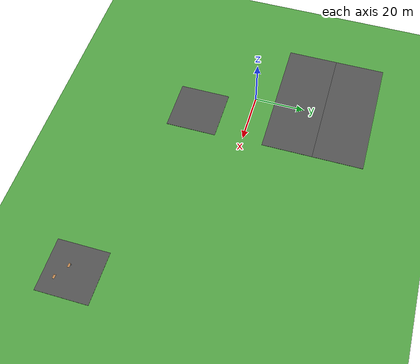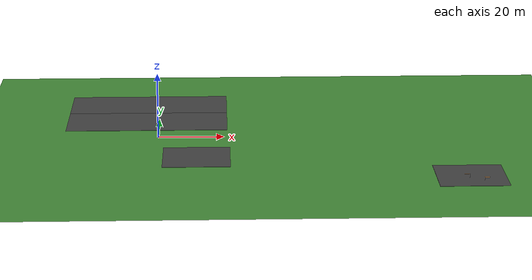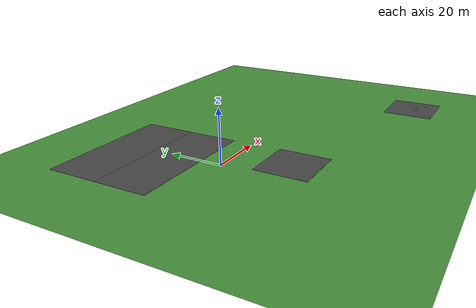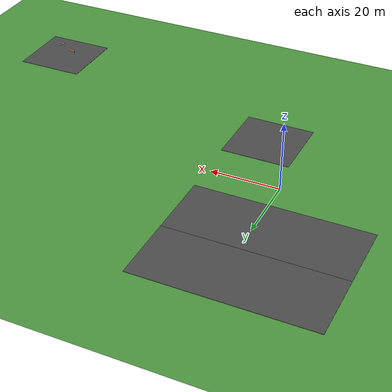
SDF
<sdf version="1.4">
 <world name="default">
  <light name="sun" type="directional">
   <pose>0 0 10 0 -0 0</pose>
   <diffuse>0.8 0.8 0.8 1</diffuse>
   <specular>0.2 0.2 0.2 1</specular>
   <attenuation>
    <range>1000</range>
    <constant>0.9</constant>
    <linear>0.01</linear>
    <quadratic>0.001</quadratic>
   </attenuation>
   <direction>-0.5 0.1 -0.9</direction>
  </light>
  <physics type="ode">
   <max_step_size>0.001</max_step_size>
   <real_time_factor>1</real_time_factor>
   <real_time_update_rate>1000</real_time_update_rate>
   <gravity>0 0 -9.8</gravity>
  </physics>
  <scene>
   <grid>0</grid>
   <sky><clouds><speed>8</speed></clouds></sky>
   <ambient>0.4 0.4 0.4 1</ambient>
   <background>0.7 0.7 0.7 1</background>
   <shadows>1</shadows>
  </scene>
  <spherical_coordinates>
   <surface_model>EARTH_WGS84</surface_model>
   <latitude_deg>0</latitude_deg>
   <longitude_deg>0</longitude_deg>
   <elevation>0</elevation>
   <heading_deg>0</heading_deg>
  </spherical_coordinates>
  <model name="ground_plane_0">
   <static>1</static>
   <link name="link">
    <collision name="collision">
     <geometry><plane><normal>0 0 1</normal><size>100 100</size></plane></geometry>
     <surface><friction><ode><mu>100</mu><mu2>50</mu2></ode></friction></surface>
    </collision>
    <velocity_decay><linear>0</linear><angular>0</angular></velocity_decay>
   </link>
   <pose>-4 0 0 0 -0 0</pose>
  </model>
  <model name="ground_plane">
   <static>1</static>
   <link name="link">
    <collision name="collision">
     <geometry><plane><normal>0 0 1</normal><size>100 100</size></plane></geometry>
     <surface><friction><ode><mu>100</mu><mu2>50</mu2></ode></friction></surface>
    </collision>
    <velocity_decay><linear>0</linear><angular>0</angular></velocity_decay>
   </link>
   <pose>-4 99.5994 0 0 -0 0</pose>
  </model>
  <model name="ground_plane_1">
   <static>1</static>
   <link name="link">
    <collision name="collision">
     <geometry><plane><normal>0 0 1</normal><size>100 100</size></plane></geometry>
     <surface><friction><ode><mu>100</mu><mu2>50</mu2></ode></friction></surface>
    </collision>
    <velocity_decay><linear>0</linear><angular>0</angular></velocity_decay>
   </link>
   <pose>-102 0 0 0 -0 0</pose>
  </model>
  <model name="ground_plane_2">
   <static>1</static>
   <link name="link">
    <collision name="collision">
     <geometry><plane><normal>0 0 1</normal><size>100 100</size></plane></geometry>
     <surface><friction><ode><mu>100</mu><mu2>50</mu2></ode></friction></surface>
    </collision>
    <velocity_decay><linear>0</linear><angular>0</angular></velocity_decay>
   </link>
   <pose>-103 100 0 0 -0 0</pose>
  </model>
  <model name="vrc_driving_terrain_0">
   <static>1</static>
   <link name="grass_plane">
    <collision name="collision">
     <geometry><plane><normal>0 0 1</normal><size>500 500</size></plane></geometry>
     <surface><friction><ode><mu>0.5</mu><mu2>0.5</mu2></ode></friction></surface>
    </collision>
    <visual name="visual_0">
     <cast_shadows>0</cast_shadows>
     <geometry><plane><normal>0 0 1</normal><size>500 500</size></plane></geometry>
     <material>
      <script>
       <uri>model://vrc_driving_terrain/materials/scripts</uri>
       <uri>model://vrc_driving_terrain/materials/textures</uri>
       <name>vrc/grass</name>
      </script>
     </material>
    </visual>
    <velocity_decay><linear>0</linear><angular>0</angular></velocity_decay>
   </link>
   <pose>-12.4943 -66.4306 -0.1 0 -0 0</pose>
  </model>
  <model name="table">
   <static>1</static>
   <link name="link">
    <collision name="surface">
     <pose>0 0 1 0 -0 0</pose>
     <geometry><box><size>1.5 0.8 0.03</size></box></geometry>
     <surface><friction><ode><mu>0.6</mu><mu2>0.6</mu2></ode></friction></surface>
    </collision>
    <visual name="visual1">
     <pose>0 0 1 0 -0 0</pose>
     <geometry><box><size>1.5 0.8 0.03</size></box></geometry>
     <material>
      <script><uri>file://media/materials/scripts/gazebo.material</uri><name>Gazebo/Wood</name></script>
     </material>
    </visual>
    <collision name="front_left_leg">
     <pose>0.68 0.38 0.5 0 -0 0</pose>
     <geometry><cylinder><radius>0.02</radius><length>1</length></cylinder></geometry>
    </collision>
    <visual name="front_left_leg">
     <pose>0.68 0.38 0.5 0 -0 0</pose>
     <geometry><cylinder><radius>0.02</radius><length>1</length></cylinder></geometry>
     <material>
      <script><uri>file://media/materials/scripts/gazebo.material</uri><name>Gazebo/Grey</name></script>
     </material>
    </visual>
    <collision name="front_right_leg">
     <pose>0.68 -0.38 0.5 0 -0 0</pose>
     <geometry><cylinder><radius>0.02</radius><length>1</length></cylinder></geometry>
    </collision>
    <visual name="front_right_leg">
     <pose>0.68 -0.38 0.5 0 -0 0</pose>
     <geometry><cylinder><radius>0.02</radius><length>1</length></cylinder></geometry>
     <material>
      <script><uri>file://media/materials/scripts/gazebo.material</uri><name>Gazebo/Grey</name></script>
     </material>
    </visual>
    <collision name="back_right_leg">
     <pose>-0.68 -0.38 0.5 0 -0 0</pose>
     <geometry><cylinder><radius>0.02</radius><length>1</length></cylinder></geometry>
    </collision>
    <visual name="back_right_leg">
     <pose>-0.68 -0.38 0.5 0 -0 0</pose>
     <geometry><cylinder><radius>0.02</radius><length>1</length></cylinder></geometry>
     <material>
      <script><uri>file://media/materials/scripts/gazebo.material</uri><name>Gazebo/Grey</name></script>
     </material>
    </visual>
    <collision name="back_left_leg">
     <pose>-0.68 0.38 0.5 0 -0 0</pose>
     <geometry><cylinder><radius>0.02</radius><length>1</length></cylinder></geometry>
    </collision>
    <visual name="back_left_leg">
     <pose>-0.68 0.38 0.5 0 -0 0</pose>
     <geometry><cylinder><radius>0.02</radius><length>1</length></cylinder></geometry>
     <material>
      <script><uri>file://media/materials/scripts/gazebo.material</uri><name>Gazebo/Grey</name></script>
     </material>
    </visual>
    <velocity_decay><linear>0</linear><angular>0</angular></velocity_decay>
   </link>
   <pose>89.1422 -43.328 0 0 -0 0</pose>
  </model>
  <model name="table_0">
   <static>1</static>
   <link name="link">
    <collision name="surface">
     <pose>0 0 1 0 -0 0</pose>
     <geometry><box><size>1.5 0.8 0.03</size></box></geometry>
     <surface><friction><ode><mu>0.6</mu><mu2>0.6</mu2></ode></friction></surface>
    </collision>
    <visual name="visual1">
     <pose>0 0 1 0 -0 0</pose>
     <geometry><box><size>1.5 0.8 0.03</size></box></geometry>
     <material>
      <script><uri>file://media/materials/scripts/gazebo.material</uri><name>Gazebo/Wood</name></script>
     </material>
    </visual>
    <collision name="front_left_leg">
     <pose>0.68 0.38 0.5 0 -0 0</pose>
     <geometry><cylinder><radius>0.02</radius><length>1</length></cylinder></geometry>
    </collision>
    <visual name="front_left_leg">
     <pose>0.68 0.38 0.5 0 -0 0</pose>
     <geometry><cylinder><radius>0.02</radius><length>1</length></cylinder></geometry>
     <material>
      <script><uri>file://media/materials/scripts/gazebo.material</uri><name>Gazebo/Grey</name></script>
     </material>
    </visual>
    <collision name="front_right_leg">
     <pose>0.68 -0.38 0.5 0 -0 0</pose>
     <geometry><cylinder><radius>0.02</radius><length>1</length></cylinder></geometry>
    </collision>
    <visual name="front_right_leg">
     <pose>0.68 -0.38 0.5 0 -0 0</pose>
     <geometry><cylinder><radius>0.02</radius><length>1</length></cylinder></geometry>
     <material>
      <script><uri>file://media/materials/scripts/gazebo.material</uri><name>Gazebo/Grey</name></script>
     </material>
    </visual>
    <collision name="back_right_leg">
     <pose>-0.68 -0.38 0.5 0 -0 0</pose>
     <geometry><cylinder><radius>0.02</radius><length>1</length></cylinder></geometry>
    </collision>
    <visual name="back_right_leg">
     <pose>-0.68 -0.38 0.5 0 -0 0</pose>
     <geometry><cylinder><radius>0.02</radius><length>1</length></cylinder></geometry>
     <material>
      <script><uri>file://media/materials/scripts/gazebo.material</uri><name>Gazebo/Grey</name></script>
     </material>
    </visual>
    <collision name="back_left_leg">
     <pose>-0.68 0.38 0.5 0 -0 0</pose>
     <geometry><cylinder><radius>0.02</radius><length>1</length></cylinder></geometry>
    </collision>
    <visual name="back_left_leg">
     <pose>-0.68 0.38 0.5 0 -0 0</pose>
     <geometry><cylinder><radius>0.02</radius><length>1</length></cylinder></geometry>
     <material>
      <script><uri>file://media/materials/scripts/gazebo.material</uri><name>Gazebo/Grey</name></script>
     </material>
    </visual>
    <velocity_decay><linear>0</linear><angular>0</angular></velocity_decay>
   </link>
   <pose>94.4463 -46.5777 0 0 -0 0</pose>
  </model>
  <model name="ground_plane_3">
   <static>1</static>
   <link name="link">
    <collision name="collision">
     <geometry><plane><normal>0 0 1</normal><size>100 100</size></plane></geometry>
     <surface><friction><ode><mu>100</mu><mu2>50</mu2></ode></friction></surface>
    </collision>
    <velocity_decay><linear>0</linear><angular>0</angular></velocity_decay>
   </link>
   <pose>96 0 0 0 -0 0</pose>
  </model>
  <model name="ground_plane_4">
   <static>1</static>
   <link name="link">
    <collision name="collision">
     <geometry><plane><normal>0 0 1</normal><size>100 100</size></plane></geometry>
     <surface><friction><ode><mu>100</mu><mu2>50</mu2></ode></friction></surface>
    </collision>
    <velocity_decay><linear>0</linear><angular>0</angular></velocity_decay>
   </link>
   <pose>95 100 0 0 -0 0</pose>
  </model>
  <model name="asphalt_plane">
   <static>1</static>
   <link name="link">
    <collision name="collision"><geometry><box><size>50 20 0</size></box></geometry></collision>
    <visual name="visual">
     <cast_shadows>0</cast_shadows>
     <geometry><box><size>50 20 0.1</size></box></geometry>
     <material>
      <script>
       <uri>model://asphalt_plane/materials/scripts</uri>
       <uri>model://asphalt_plane/materials/textures</uri>
       <name>vrc/asphalt</name>
      </script>
     </material>
    </visual>
    <velocity_decay><linear>0</linear><angular>0</angular></velocity_decay>
   </link>
   <pose>-3.88449 17.959 0 0 -0 0</pose>
  </model>
  <model name="asphalt_plane_0">
   <static>1</static>
   <link name="link">
    <collision name="collision"><geometry><box><size>20 20 0</size></box></geometry></collision>
    <visual name="visual">
     <cast_shadows>0</cast_shadows>
     <geometry><box><size>20 20 0.1</size></box></geometry>
     <material>
      <script>
       <uri>model://asphalt_plane/materials/scripts</uri>
       <uri>model://asphalt_plane/materials/textures</uri>
       <name>vrc/asphalt</name>
      </script>
     </material>
    </visual>
    <velocity_decay><linear>0</linear><angular>0</angular></velocity_decay>
   </link>
   <pose>90.4858 -41.5677 0 0 -0 0</pose>
  </model>
  <model name="asphalt_plane_1">
   <static>1</static>
   <link name="link">
    <collision name="collision"><geometry><box><size>50 20 0</size></box></geometry></collision>
    <visual name="visual">
     <cast_shadows>0</cast_shadows>
     <geometry><box><size>50 20 0.1</size></box></geometry>
     <material>
      <script>
       <uri>model://asphalt_plane/materials/scripts</uri>
       <uri>model://asphalt_plane/materials/textures</uri>
       <name>vrc/asphalt</name>
      </script>
     </material>
    </visual>
    <velocity_decay><linear>0</linear><angular>0</angular></velocity_decay>
   </link>
   <pose>-3.87627 37.9098 0 0 -0 0</pose>
  </model>
  <model name="asphalt_plane_2">
   <static>1</static>
   <link name="link">
    <collision name="collision"><geometry><box><size>20 20 0</size></box></geometry></collision>
    <visual name="visual">
     <cast_shadows>0</cast_shadows>
     <geometry><box><size>20 20 0.1</size></box></geometry>
     <material>
      <script>
       <uri>model://asphalt_plane/materials/scripts</uri>
       <uri>model://asphalt_plane/materials/textures</uri>
       <name>vrc/asphalt</name>
      </script>
     </material>
    </visual>
    <velocity_decay><linear>0</linear><angular>0</angular></velocity_decay>
   </link>
   <pose>11.7649 -20.9893 0 0 -0 0</pose>
  </model>
 </world>
</sdf>
